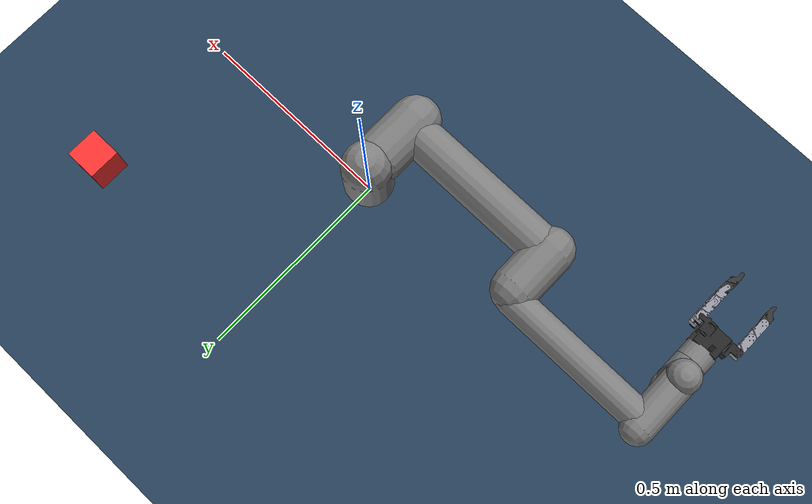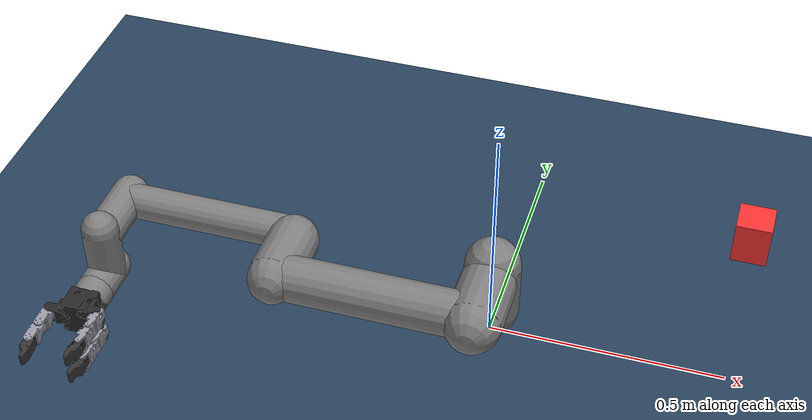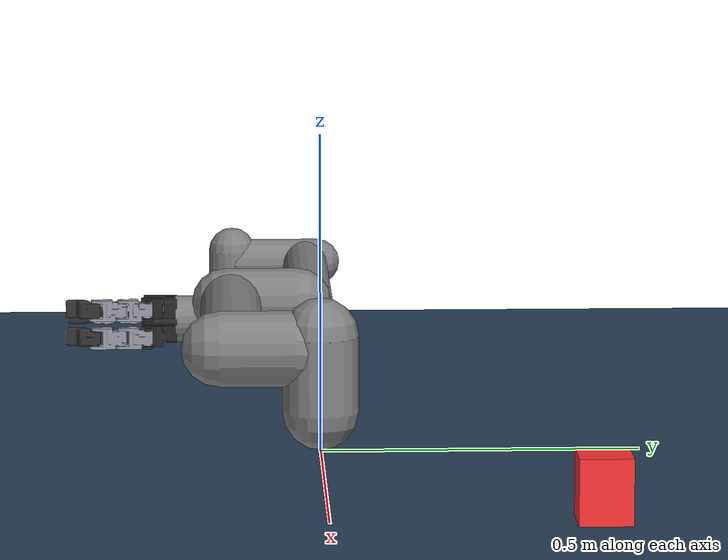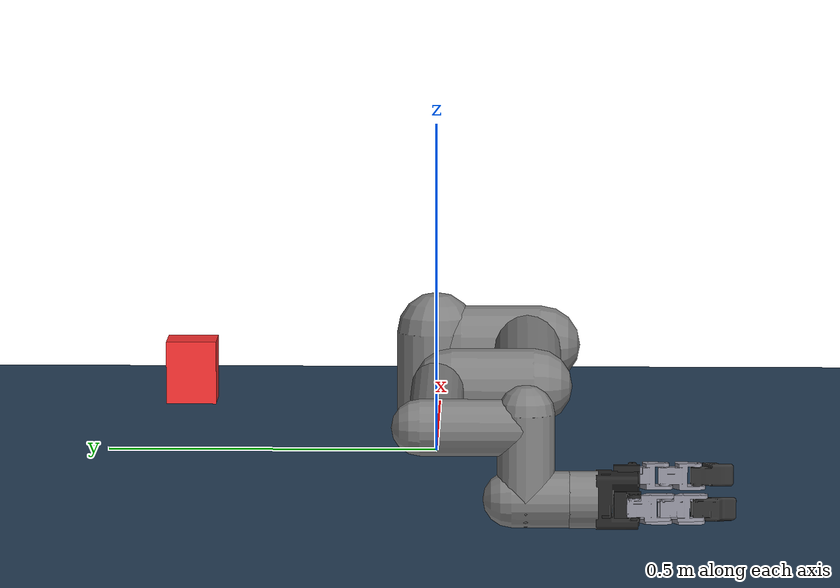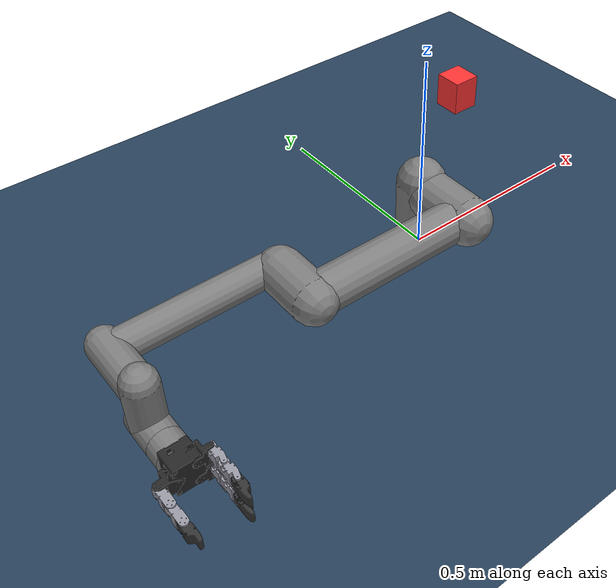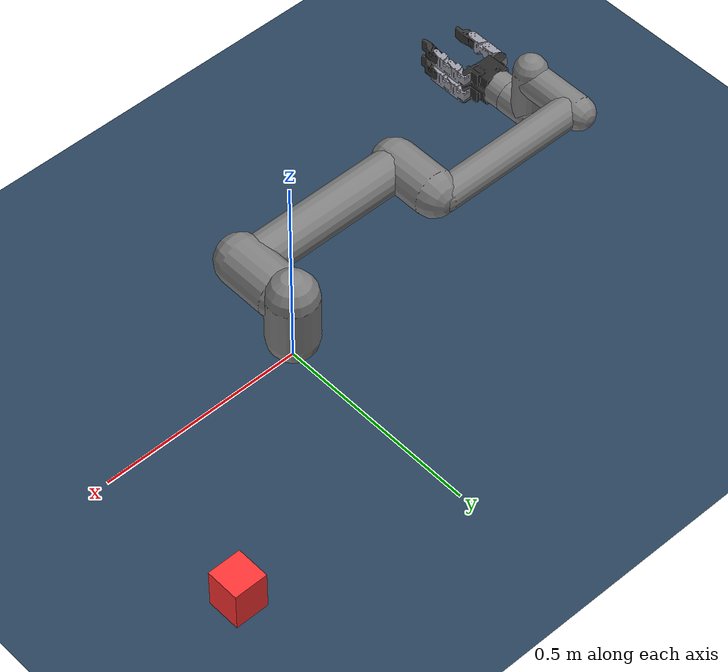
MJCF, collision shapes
<mujoco model="ur5e_gripper_scene">
  <include file="ur5e_gripper.xml"/>

  <statistic center="0.3 0 0.4" extent="0.8"/>

  <visual>
    <headlight diffuse="0.6 0.6 0.6" ambient="0.1 0.1 0.1" specular="0 0 0"/>
    <rgba haze="0.15 0.25 0.35 1"/>
    <global azimuth="120" elevation="-20"/>
  </visual>

  <asset>
    <texture type="skybox" builtin="gradient" rgb1="0.3 0.5 0.7" rgb2="0 0 0" width="512" height="3072"/>
    <texture type="2d" name="groundplane" builtin="checker" mark="edge"
      rgb1="0.2 0.3 0.4" rgb2="0.1 0.2 0.3" markrgb="0.8 0.8 0.8" width="300" height="300"/>
    <material name="groundplane" texture="groundplane" texuniform="true" texrepeat="5 5" reflectance="0.2"/>
  </asset>

  <worldbody>
    <light pos="0 0 1.5" dir="0 0 -1" directional="true"/>
    <geom name="floor" size="0 0 0.05" type="plane" material="groundplane"/>

    <!-- 그래스핑 대상: 박스 -->
    <body name="target_object" pos="0.5 0.4 0.05">
      <joint type="free"/>
      <geom size="0.04 0.04 0.05" type="box"
          density="500" friction="1 0.005 0.0001" rgba="1 0.2 0.2 1"/>
    </body>
  </worldbody>
</mujoco>

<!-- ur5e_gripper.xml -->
<mujoco model="ur5e_3finger_gripper">
  <compiler angle="radian" autolimits="true"/>

  <option integrator="implicitfast" timestep="0.002"/>

  <default>
    <default class="ur5e">
      <material specular="0.5" shininess="0.25"/>
      <joint axis="0 1 0" range="-6.28319 6.28319" armature="0.1"/>
      <general gaintype="fixed" biastype="affine" ctrlrange="-6.2831 6.2831" gainprm="2000" biasprm="0 -2000 -400"
        forcerange="-150 150"/>
      <default class="size3">
        <default class="size3_limited">
          <joint range="-3.1415 3.1415"/>
          <general ctrlrange="-3.1415 3.1415"/>
        </default>
      </default>
      <default class="size1">
        <general gainprm="500" biasprm="0 -500 -100" forcerange="-28 28"/>
      </default>
      <default class="visual">
        <geom type="mesh" contype="0" conaffinity="0" group="2"/>
      </default>
      <default class="collision">
        <geom type="capsule" group="3"/>
        <default class="eef_collision">
          <geom type="cylinder"/>
        </default>
      </default>
      <site size="0.001" rgba="0.5 0.5 0.5 0.3" group="4"/>
    </default>
    <default class="gripper">
      <joint armature="0.01" damping="0.05"/>
      <geom type="mesh" contype="1" conaffinity="1" friction="1.0 0.005 0.001" group="2"/>
      <general gaintype="fixed" biastype="affine" gainprm="50" biasprm="0 -50 -5" forcerange="-10 10"/>
    </default>
  </default>

  <asset>
    <!-- UR5e meshes (from menagerie) -->
    <material class="ur5e" name="black" rgba="0.033 0.033 0.033 1"/>
    <material class="ur5e" name="jointgray" rgba="0.278 0.278 0.278 1"/>
    <material class="ur5e" name="linkgray" rgba="0.82 0.82 0.82 1"/>
    <material class="ur5e" name="urblue" rgba="0.49 0.678 0.8 1"/>

    <mesh file="../../mujoco_menagerie/universal_robots_ur5e/assets/base_0.obj"/>
    <mesh file="../../mujoco_menagerie/universal_robots_ur5e/assets/base_1.obj"/>
    <mesh file="../../mujoco_menagerie/universal_robots_ur5e/assets/shoulder_0.obj"/>
    <mesh file="../../mujoco_menagerie/universal_robots_ur5e/assets/shoulder_1.obj"/>
    <mesh file="../../mujoco_menagerie/universal_robots_ur5e/assets/shoulder_2.obj"/>
    <mesh file="../../mujoco_menagerie/universal_robots_ur5e/assets/upperarm_0.obj"/>
    <mesh file="../../mujoco_menagerie/universal_robots_ur5e/assets/upperarm_1.obj"/>
    <mesh file="../../mujoco_menagerie/universal_robots_ur5e/assets/upperarm_2.obj"/>
    <mesh file="../../mujoco_menagerie/universal_robots_ur5e/assets/upperarm_3.obj"/>
    <mesh file="../../mujoco_menagerie/universal_robots_ur5e/assets/forearm_0.obj"/>
    <mesh file="../../mujoco_menagerie/universal_robots_ur5e/assets/forearm_1.obj"/>
    <mesh file="../../mujoco_menagerie/universal_robots_ur5e/assets/forearm_2.obj"/>
    <mesh file="../../mujoco_menagerie/universal_robots_ur5e/assets/forearm_3.obj"/>
    <mesh file="../../mujoco_menagerie/universal_robots_ur5e/assets/wrist1_0.obj"/>
    <mesh file="../../mujoco_menagerie/universal_robots_ur5e/assets/wrist1_1.obj"/>
    <mesh file="../../mujoco_menagerie/universal_robots_ur5e/assets/wrist1_2.obj"/>
    <mesh file="../../mujoco_menagerie/universal_robots_ur5e/assets/wrist2_0.obj"/>
    <mesh file="../../mujoco_menagerie/universal_robots_ur5e/assets/wrist2_1.obj"/>
    <mesh file="../../mujoco_menagerie/universal_robots_ur5e/assets/wrist2_2.obj"/>
    <mesh file="../../mujoco_menagerie/universal_robots_ur5e/assets/wrist3.obj"/>

    <!-- Gripper meshes -->
    <mesh name="palm"                  file="../description/meshes/gripper/palm.stl"                  scale="0.001 0.001 0.001"/>
    <mesh name="mid_finger_palm_joint" file="../description/meshes/gripper/mid_finger_palm_joint.stl" scale="0.001 0.001 0.001"/>
    <mesh name="two_finger_palm_joint" file="../description/meshes/gripper/two_finger_palm_joint.stl" scale="0.001 0.001 0.001"/>
    <mesh name="two_finger"            file="../description/meshes/gripper/two_finger.stl"            scale="0.001 0.001 0.001"/>
    <mesh name="two_finger_tip"        file="../description/meshes/gripper/two_finger_tip.stl"        scale="0.001 0.001 0.001"/>

    <!-- Gripper materials -->
    <material name="gripper_dark"     rgba="0.15 0.15 0.15 1" specular="0.3" shininess="0.5"/>
    <material name="gripper_metal"    rgba="0.6 0.6 0.65 1"   specular="0.7" shininess="0.8"/>
    <material name="fingertip_rubber" rgba="0.2 0.2 0.2 1"    specular="0.1" shininess="0.1"/>
  </asset>

  <worldbody>
    <light name="spotlight" mode="targetbodycom" target="wrist_2_link" pos="0 -1 2"/>
    <body name="base" quat="0 0 0 -1" childclass="ur5e">
      <inertial mass="4.0" pos="0 0 0" diaginertia="0.00443333156 0.00443333156 0.0072"/>
      <geom mesh="base_0" material="black" class="visual"/>
      <geom mesh="base_1" material="jointgray" class="visual"/>
      <body name="shoulder_link" pos="0 0 0.163">
        <inertial mass="3.7" pos="0 0 0" diaginertia="0.0102675 0.0102675 0.00666"/>
        <joint name="shoulder_pan_joint" class="size3" axis="0 0 1"/>
        <geom mesh="shoulder_0" material="urblue" class="visual"/>
        <geom mesh="shoulder_1" material="black" class="visual"/>
        <geom mesh="shoulder_2" material="jointgray" class="visual"/>
        <geom class="collision" size="0.06 0.06" pos="0 0 -0.04"/>
        <body name="upper_arm_link" pos="0 0.138 0" quat="1 0 1 0">
          <inertial mass="8.393" pos="0 0 0.2125" diaginertia="0.133886 0.133886 0.0151074"/>
          <joint name="shoulder_lift_joint" class="size3"/>
          <geom mesh="upperarm_0" material="linkgray" class="visual"/>
          <geom mesh="upperarm_1" material="black" class="visual"/>
          <geom mesh="upperarm_2" material="jointgray" class="visual"/>
          <geom mesh="upperarm_3" material="urblue" class="visual"/>
          <geom class="collision" pos="0 -0.04 0" quat="1 1 0 0" size="0.06 0.06"/>
          <geom class="collision" size="0.05 0.2" pos="0 0 0.2"/>
          <body name="forearm_link" pos="0 -0.131 0.425">
            <inertial mass="2.275" pos="0 0 0.196" diaginertia="0.0311796 0.0311796 0.004095"/>
            <joint name="elbow_joint" class="size3_limited"/>
            <geom mesh="forearm_0" material="urblue" class="visual"/>
            <geom mesh="forearm_1" material="linkgray" class="visual"/>
            <geom mesh="forearm_2" material="black" class="visual"/>
            <geom mesh="forearm_3" material="jointgray" class="visual"/>
            <geom class="collision" pos="0 0.08 0" quat="1 1 0 0" size="0.055 0.06"/>
            <geom class="collision" size="0.038 0.19" pos="0 0 0.2"/>
            <body name="wrist_1_link" pos="0 0 0.392" quat="1 0 1 0">
              <inertial mass="1.219" pos="0 0.127 0" diaginertia="0.0025599 0.0025599 0.0021942"/>
              <joint name="wrist_1_joint" class="size1"/>
              <geom mesh="wrist1_0" material="black" class="visual"/>
              <geom mesh="wrist1_1" material="urblue" class="visual"/>
              <geom mesh="wrist1_2" material="jointgray" class="visual"/>
              <geom class="collision" pos="0 0.05 0" quat="1 1 0 0" size="0.04 0.07"/>
              <body name="wrist_2_link" pos="0 0.127 0">
                <inertial mass="1.219" pos="0 0 0.1" diaginertia="0.0025599 0.0025599 0.0021942"/>
                <joint name="wrist_2_joint" axis="0 0 1" class="size1"/>
                <geom mesh="wrist2_0" material="black" class="visual"/>
                <geom mesh="wrist2_1" material="urblue" class="visual"/>
                <geom mesh="wrist2_2" material="jointgray" class="visual"/>
                <geom class="collision" size="0.04 0.06" pos="0 0 0.04"/>
                <geom class="collision" pos="0 0.02 0.1" quat="1 1 0 0" size="0.04 0.04"/>
                <body name="wrist_3_link" pos="0 0 0.1">
                  <inertial mass="0.1889" pos="0 0.0771683 0" quat="1 0 0 1"
                    diaginertia="0.000132134 9.90863e-05 9.90863e-05"/>
                  <joint name="wrist_3_joint" class="size1"/>
                  <geom material="linkgray" mesh="wrist3" class="visual"/>
                  <geom class="eef_collision" pos="0 0.08 0" quat="1 1 0 0" size="0.04 0.02"/>
                  <site name="attachment_site" pos="0 0.1 0" quat="-1 1 0 0"/>

                  <!-- ============ 3-FINGER GRIPPER ============ -->
                  <!-- attachment_site 기준: pos="0 0.1 0" quat="-1 1 0 0" -->
                  <body name="gripper_palm" pos="0 0.14 0" euler="-1.5708 3.14159 0" childclass="gripper">
                    <inertial mass="0.2" pos="0 0 0.02" diaginertia="0.0001 0.0001 0.0001"/>
                    <geom mesh="palm" material="gripper_dark"/>

                    <!-- CENTER FINGER (Finger 1) -->
                    <body name="center_palm" pos="0.0255 0 0">
                      <inertial mass="0.05" pos="0 0 0" diaginertia="0.00001 0.00001 0.00001"/>
                      <joint name="center_palm_joint" axis="0 0 1" range="-1.5708 1.5708"/>
                      <geom mesh="mid_finger_palm_joint" material="gripper_dark"/>
                      <body name="center_upper_finger" pos="0.036 0 -0.00825">
                        <inertial mass="0.05" pos="0 0 0" diaginertia="0.00001 0.00001 0.00001"/>
                        <joint name="center_upper_finger_joint" axis="0 1 0" range="-1.5708 1.5708"/>
                        <geom mesh="two_finger" material="gripper_metal"/>
                        <body name="center_lower_finger" pos="0 0 -0.0455">
                          <inertial mass="0.05" pos="0 0 0" diaginertia="0.00001 0.00001 0.00001"/>
                          <joint name="center_lower_finger_joint" axis="0 1 0" range="-1.5708 1.5708"/>
                          <geom mesh="two_finger" material="gripper_metal"/>
                          <body name="center_fingertip" pos="0 0 -0.0455">
                            <inertial mass="0.02" pos="0 0 0" diaginertia="0.000001 0.000001 0.000001"/>
                            <joint name="center_fingertip_joint" axis="0 1 0" range="-1.5708 1.5708"/>
                            <geom name="center_fingertip_geom" mesh="two_finger_tip" material="fingertip_rubber"/>
                            <site name="center_touch" pos="0 0 -0.02" size="0.008" rgba="1 0 0 0.3"/>
                          </body>
                        </body>
                      </body>
                    </body>

                    <!-- LEFT FINGER (Finger 2) -->
                    <body name="left_palm" pos="-0.0175 0.0245 0">
                      <inertial mass="0.05" pos="0 0 0" diaginertia="0.00001 0.00001 0.00001"/>
                      <joint name="left_palm_joint" axis="0 0 1" range="-1.5708 1.5708"/>
                      <geom mesh="two_finger_palm_joint" material="gripper_dark"/>
                      <body name="left_upper_finger" pos="-0.036 0 -0.00825" quat="0 0 0 1">
                        <inertial mass="0.05" pos="0 0 0" diaginertia="0.00001 0.00001 0.00001"/>
                        <joint name="left_upper_finger_joint" axis="0 1 0" range="-1.5708 1.5708"/>
                        <geom mesh="two_finger" material="gripper_metal"/>
                        <body name="left_lower_finger" pos="0 0 -0.0455">
                          <inertial mass="0.05" pos="0 0 0" diaginertia="0.00001 0.00001 0.00001"/>
                          <joint name="left_lower_finger_joint" axis="0 1 0" range="-1.5708 1.5708"/>
                          <geom mesh="two_finger" material="gripper_metal"/>
                          <body name="left_fingertip" pos="0 0 -0.0455">
                            <inertial mass="0.02" pos="0 0 0" diaginertia="0.000001 0.000001 0.000001"/>
                            <joint name="left_fingertip_joint" axis="0 1 0" range="-1.5708 1.5708"/>
                            <geom name="left_fingertip_geom" mesh="two_finger_tip" material="fingertip_rubber"/>
                            <site name="left_touch" pos="0 0 -0.02" size="0.008" rgba="1 0 0 0.3"/>
                          </body>
                        </body>
                      </body>
                    </body>

                    <!-- RIGHT FINGER (Finger 3) -->
                    <body name="right_palm" pos="-0.0175 -0.0245 0">
                      <inertial mass="0.05" pos="0 0 0" diaginertia="0.00001 0.00001 0.00001"/>
                      <joint name="right_palm_joint" axis="0 0 1" range="-1.5708 1.5708"/>
                      <geom mesh="two_finger_palm_joint" material="gripper_dark"/>
                      <body name="right_upper_finger" pos="-0.036 0 -0.00825" quat="0 0 0 1">
                        <inertial mass="0.05" pos="0 0 0" diaginertia="0.00001 0.00001 0.00001"/>
                        <joint name="right_upper_finger_joint" axis="0 1 0" range="-1.5708 1.5708"/>
                        <geom mesh="two_finger" material="gripper_metal"/>
                        <body name="right_lower_finger" pos="0 0 -0.0455">
                          <inertial mass="0.05" pos="0 0 0" diaginertia="0.00001 0.00001 0.00001"/>
                          <joint name="right_lower_finger_joint" axis="0 1 0" range="-1.5708 1.5708"/>
                          <geom mesh="two_finger" material="gripper_metal"/>
                          <body name="right_fingertip" pos="0 0 -0.0455">
                            <inertial mass="0.02" pos="0 0 0" diaginertia="0.000001 0.000001 0.000001"/>
                            <joint name="right_fingertip_joint" axis="0 1 0" range="-1.5708 1.5708"/>
                            <geom name="right_fingertip_geom" mesh="two_finger_tip" material="fingertip_rubber"/>
                            <site name="right_touch" pos="0 0 -0.02" size="0.008" rgba="1 0 0 0.3"/>
                          </body>
                        </body>
                      </body>
                    </body>
                  </body> <!-- gripper_palm -->

                </body> <!-- wrist_3_link -->
              </body> <!-- wrist_2_link -->
            </body> <!-- wrist_1_link -->
          </body> <!-- forearm_link -->
        </body> <!-- upper_arm_link -->
      </body> <!-- shoulder_link -->
    </body> <!-- base -->
  </worldbody>

  <actuator>
    <!-- UR5e -->
    <general class="size3" name="shoulder_pan" joint="shoulder_pan_joint"/>
    <general class="size3" name="shoulder_lift" joint="shoulder_lift_joint"/>
    <general class="size3_limited" name="elbow" joint="elbow_joint"/>
    <general class="size1" name="wrist_1" joint="wrist_1_joint"/>
    <general class="size1" name="wrist_2" joint="wrist_2_joint"/>
    <general class="size1" name="wrist_3" joint="wrist_3_joint"/>
    <!-- Gripper -->
    <general class="gripper" name="center_palm_act"         joint="center_palm_joint"         ctrlrange="-1.5708 1.5708"/>
    <general class="gripper" name="center_upper_finger_act" joint="center_upper_finger_joint" ctrlrange="-1.5708 1.5708"/>
    <general class="gripper" name="center_lower_finger_act" joint="center_lower_finger_joint" ctrlrange="-1.5708 1.5708"/>
    <general class="gripper" name="center_fingertip_act"    joint="center_fingertip_joint"    ctrlrange="-1.5708 1.5708"/>
    <general class="gripper" name="left_palm_act"           joint="left_palm_joint"           ctrlrange="-1.5708 1.5708"/>
    <general class="gripper" name="left_upper_finger_act"   joint="left_upper_finger_joint"   ctrlrange="-1.5708 1.5708"/>
    <general class="gripper" name="left_lower_finger_act"   joint="left_lower_finger_joint"   ctrlrange="-1.5708 1.5708"/>
    <general class="gripper" name="left_fingertip_act"      joint="left_fingertip_joint"      ctrlrange="-1.5708 1.5708"/>
    <general class="gripper" name="right_palm_act"          joint="right_palm_joint"          ctrlrange="-1.5708 1.5708"/>
    <general class="gripper" name="right_upper_finger_act"  joint="right_upper_finger_joint"  ctrlrange="-1.5708 1.5708"/>
    <general class="gripper" name="right_lower_finger_act"  joint="right_lower_finger_joint"  ctrlrange="-1.5708 1.5708"/>
    <general class="gripper" name="right_fingertip_act"     joint="right_fingertip_joint"     ctrlrange="-1.5708 1.5708"/>
  </actuator>

  <sensor>
    <!-- 촉각 센서: 각 fingertip의 접촉력 (ch12 grasping용) -->
    <touch name="center_touch_sensor" site="center_touch"/>
    <touch name="left_touch_sensor"   site="left_touch"/>
    <touch name="right_touch_sensor"  site="right_touch"/>

    <!-- Force/Torque 센서: EE (ch11 impedance control용) -->
    <force name="ee_force"  site="attachment_site"/>
    <torque name="ee_torque" site="attachment_site"/>

    <!-- Joint position/velocity 센서 (ch05 velocity kinematics, ch08 dynamics용) -->
    <jointpos name="jp_shoulder_pan"  joint="shoulder_pan_joint"/>
    <jointpos name="jp_shoulder_lift" joint="shoulder_lift_joint"/>
    <jointpos name="jp_elbow"         joint="elbow_joint"/>
    <jointpos name="jp_wrist_1"       joint="wrist_1_joint"/>
    <jointpos name="jp_wrist_2"       joint="wrist_2_joint"/>
    <jointpos name="jp_wrist_3"       joint="wrist_3_joint"/>
    <jointvel name="jv_shoulder_pan"  joint="shoulder_pan_joint"/>
    <jointvel name="jv_shoulder_lift" joint="shoulder_lift_joint"/>
    <jointvel name="jv_elbow"         joint="elbow_joint"/>
    <jointvel name="jv_wrist_1"       joint="wrist_1_joint"/>
    <jointvel name="jv_wrist_2"       joint="wrist_2_joint"/>
    <jointvel name="jv_wrist_3"       joint="wrist_3_joint"/>
  </sensor>

  <keyframe>
    <key name="home"
      qpos="-1.5708 -1.5708 1.5708 -1.5708 -1.5708 0
             0 0 0 0  0 0 0 0  0 0 0 0
             0.5 0.4 0.05  1 0 0 0"
      ctrl="-1.5708 -1.5708 1.5708 -1.5708 -1.5708 0
             0 0 0 0  0 0 0 0  0 0 0 0"/>
  </keyframe>
</mujoco>
